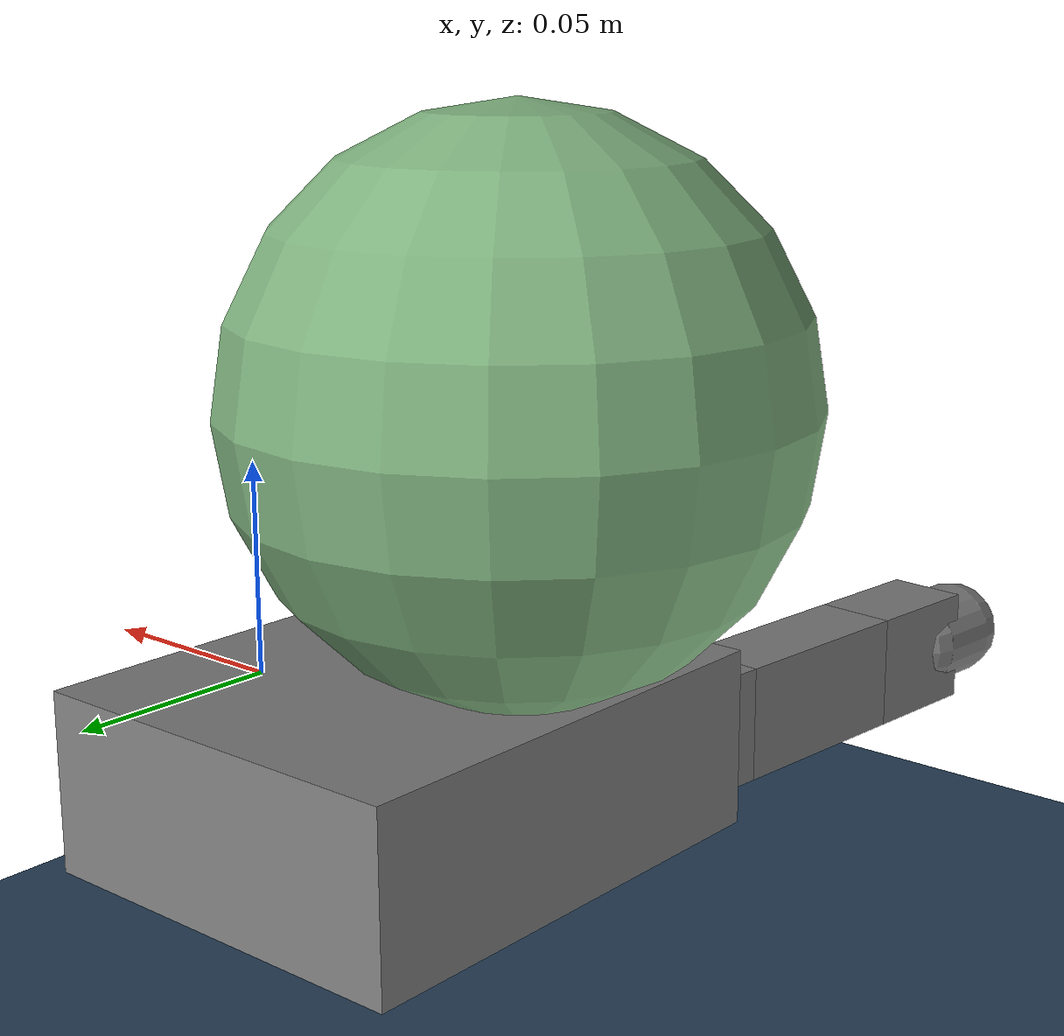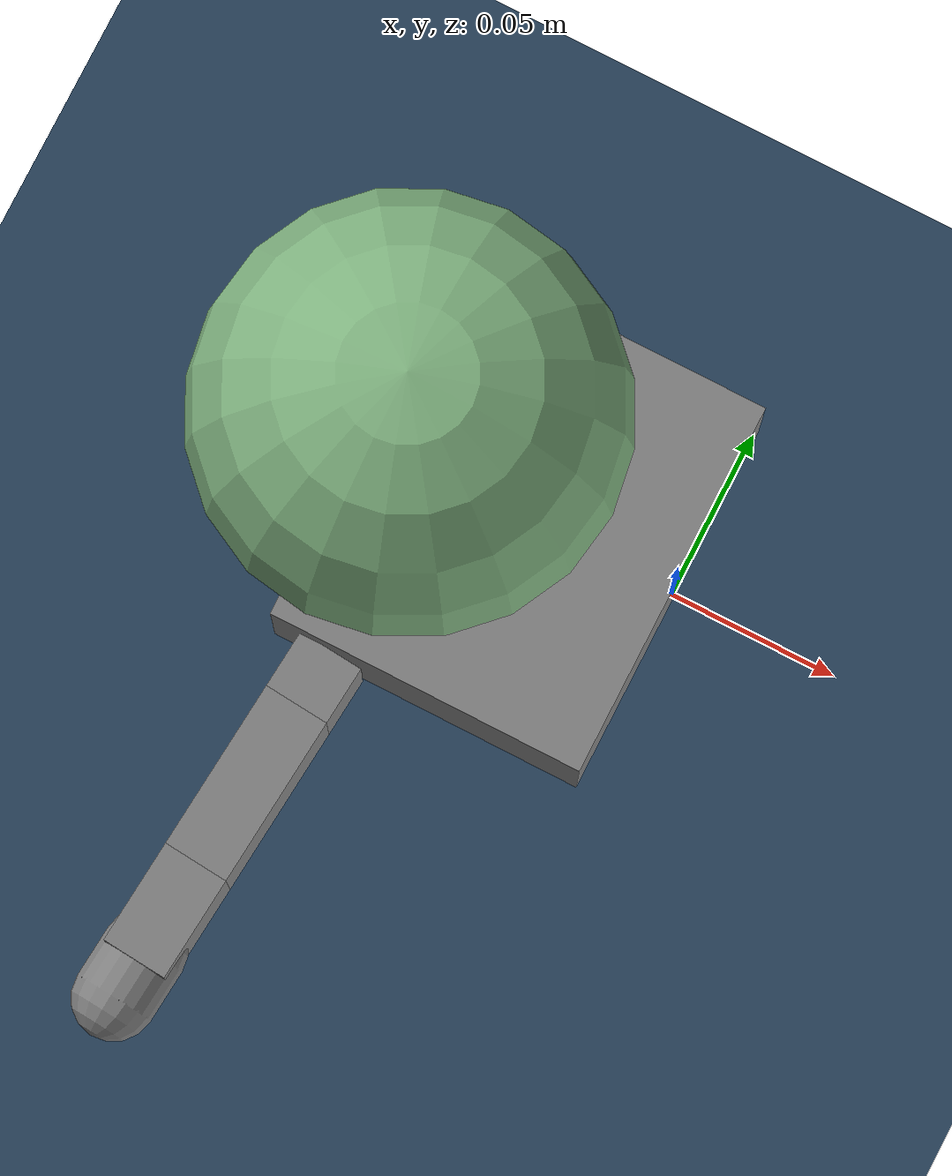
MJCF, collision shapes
<mujoco model="allegro_right_thumb">
  <compiler angle="radian" meshdir="assets" autolimits="true"/>

  <option cone="elliptic" impratio="10"/>

  <!-- SCENE CONFIGURATION -->
  <statistic center="0 0 0" extent="0.3"/>

  <visual>
    <rgba haze="0.15 0.25 0.35 1"/>
    <quality shadowsize="8192"/>
    <global azimuth="130" elevation="-40"/>
  </visual>

  <asset>
    <texture type="skybox" builtin="gradient" rgb1="0.3 0.5 0.7" rgb2="0 0 0" width="512" height="3072"/>
    <texture type="2d" name="groundplane" builtin="checker" mark="edge" rgb1="0.2 0.3 0.4" rgb2="0.1 0.2 0.3"
      markrgb="0.8 0.8 0.8" width="300" height="300"/>
    <material name="groundplane" texture="groundplane" texuniform="true" texrepeat="5 5" reflectance="0.2"/>
  </asset>
  <!-- SCENE CONFIGURATION -->

  <default>
    <default class="allegro_right">
      <joint axis="0 1 0" damping=".1"/>
      <position kp="100"/>
      <velocity kv="0" />
      <geom density="800"/>

      <default class="visual">
        <geom type="mesh" contype="0" conaffinity="0" group="2" material="black"/>
        <default class="palm_visual">
          <geom mesh="base_link"/>
        </default>
        <default class="base_visual">
          <geom mesh="link_0.0"/>
        </default>
        <default class="proximal_visual">
          <geom mesh="link_1.0"/>
        </default>
        <default class="medial_visual">
          <geom mesh="link_2.0"/>
        </default>
        <default class="distal_visual">
          <geom mesh="link_3.0"/>
        </default>
        <default class="fingertip_visual">
          <geom pos="0 0 0.0267" material="white" mesh="link_3.0_tip"/>
        </default>
        <default class="thumbtip_visual">
          <geom pos="0 0 0.0423" material="white" mesh="link_15.0_tip"/>
        </default>
      </default>

      <default class="collision">
        <geom group="3" type="box" mass="0"/>
        <default class="palm_collision">
          <geom size="0.0204 0.0565 0.0475" pos="-0.0093 0 -0.0475"/>
        </default>
        <default class="base_collision">
          <geom size="0.0098 0.01375 0.0082" pos="0 0 0.0082"/>
          <default class="thumb_base_collision">
            <geom size="0.0179 0.017 0.02275" pos="-0.0179 0.009 0.0145"/>
          </default>
        </default>
        <default class="proximal_collision">
          <geom size="0.0098 0.01375 0.027" pos="0 0 0.027"/>
          <default class="thumb_proximal_collision">
            <geom size="0.0098 0.01375 0.00885" pos="0 0 0.00885"/>
          </default>
        </default>
        <default class="medial_collision">
          <geom size="0.0098 0.01375 0.0192" pos="0 0 0.0192"/>
          <default class="thumb_medial_collision">
            <geom size="0.0098 0.01375 0.0257" pos="0 0 0.0257"/>
          </default>
        </default>
        <default class="distal_collision">
          <geom size="0.0098 0.01375 0.008" pos="0 0 0.008"/>
          <default class="thumb_distal_collision">
            <geom size="0.0098 0.01375 0.0157" pos="0 0 0.0157"/>
          </default>
        </default>
        <default class="fingertip_collision">
          <geom type="capsule" size="0.012 0.01" pos="0 0 0.019"/>
          <default class="thumbtip_collision">
            <geom type="capsule" size="0.012 0.008" pos="0 0 0.035"/>
          </default>
        </default>
      </default>

      <default class="base">
        <joint axis="0 0 1" range="-0.47 0.47"/>
        <position ctrlrange="-0.47 0.47"/>
      </default>
      <default class="proximal">
        <joint range="-0.196 1.61"/>
        <position ctrlrange="-0.196 1.61"/>
      </default>
      <default class="medial">
        <joint range="-0.174 1.709"/>
        <position ctrlrange="-0.174 1.709"/>
      </default>
      <default class="distal">
        <joint range="-0.227 1.618"/>
        <position ctrlrange="-0.227 1.618"/>
      </default>
      <default class="thumb_base">
        <joint axis="-1 0 0" range="0.263 1.396"/>
        <position ctrlrange="0.263 1.396"/>
      </default>
      <default class="thumb_proximal">
        <joint axis="0 0 1" range="-0.105 1.163"/>
        <position ctrlrange="-0.105 1.163"/>
      </default>
      <default class="thumb_medial">
        <joint range="-0.189 1.644"/>
        <position ctrlrange="-0.189 1.644"/>
      </default>
      <default class="thumb_distal">
        <joint range="-0.162 1.719"/>
        <position ctrlrange="-0.162 1.719"/>
      </default>
    </default>
  </default>

  <asset>
    <material name="black" rgba="0.2 0.2 0.2 1"/>
    <material name="white" rgba="0.9 0.9 0.9 1"/>

    <mesh file="base_link.stl"/>
    <mesh file="link_0.0.stl"/>
    <mesh file="link_1.0.stl"/>
    <mesh file="link_2.0.stl"/>
    <mesh file="link_3.0.stl"/>
    <mesh file="link_3.0_tip.stl"/>
    <mesh file="link_12.0_right.stl"/>
    <mesh file="link_13.0.stl"/>
    <mesh file="link_14.0.stl"/>
    <mesh file="link_15.0.stl"/>
    <mesh file="link_15.0_tip.stl"/>
  </asset>

  <worldbody>
    <light pos="0 0 1"/>
    <light pos="0.3 0 1.5" dir="0 0 -1" directional="true"/>
    <geom name="floor" pos="0 0 -0.1" size="0 0 0.05" type="plane" material="groundplane"/>
    <body name="object" pos="-0.081 0.001 0.073">
      <joint axis="0 0 1"/>
      <geom type="sphere" size="0.06" rgba="0.5 0.7 0.5 1" condim="6" priority="1"
        friction="1.0 0.002 0.002"/>
    </body>
    <body name="palm" quat="0 1 0 1" childclass="allegro_right">
      <geom class="palm_visual" mesh="base_link"/>
      <geom class="palm_collision"/>
      <!-- Thumb -->
      <body name="th_base" pos="-0.0182 0.019333 -0.045987" quat="0.477714 -0.521334 -0.521334 -0.477714">
        <joint name="thj0" class="thumb_base"/>
        <geom class="visual" mesh="link_12.0_right"/>
        <geom class="thumb_base_collision"/>
        <body name="th_proximal" pos="-0.027 0.005 0.0399">
          <joint name="thj1" class="thumb_proximal"/>
          <geom class="visual" mesh="link_13.0"/>
          <geom class="thumb_proximal_collision"/>
          <body name="th_medial" pos="0 0 0.0177">
            <joint name="thj2" class="thumb_medial"/>
            <geom class="visual" mesh="link_14.0"/>
            <geom class="thumb_medial_collision"/>
            <body name="th_distal" pos="0 0 0.0514">
              <joint name="thj3" class="thumb_distal"/>
              <geom class="visual" mesh="link_15.0"/>
              <geom class="thumb_distal_collision"/>
              <body name="th_tip">
                <geom class="thumbtip_visual"/>
                <geom class="thumbtip_collision"/>
              </body>
            </body>
          </body>
        </body>
      </body>
    </body>
  </worldbody>

  <contact>
    <exclude body1="palm" body2="th_base"/>
    <exclude body1="palm" body2="th_proximal"/>
  </contact>

  <actuator>
    <position name="tha0" joint="thj0" class="thumb_base"/>
    <position name="tha1" joint="thj1" class="thumb_proximal"/>
    <position name="tha2" joint="thj2" class="thumb_medial"/>
    <position name="tha3" joint="thj3" class="thumb_distal"/>
  </actuator>
</mujoco>
